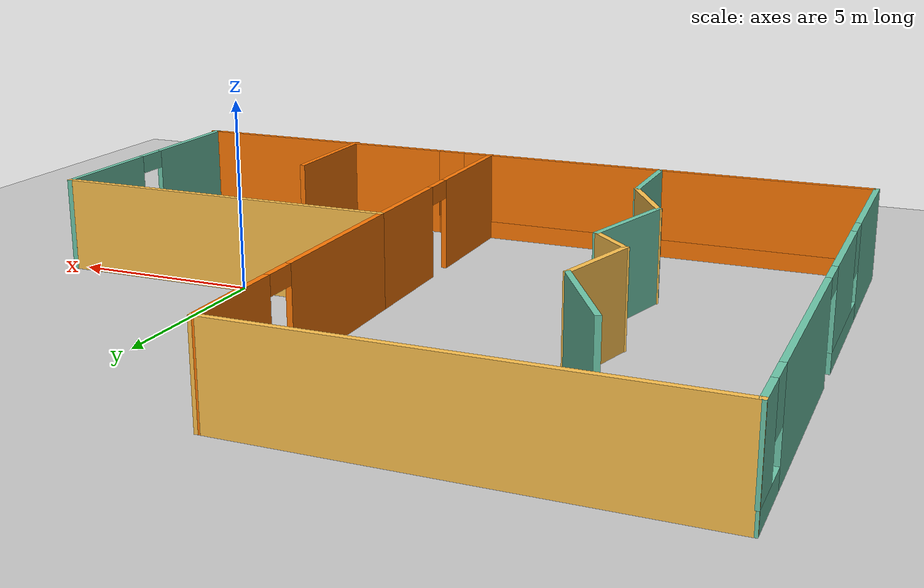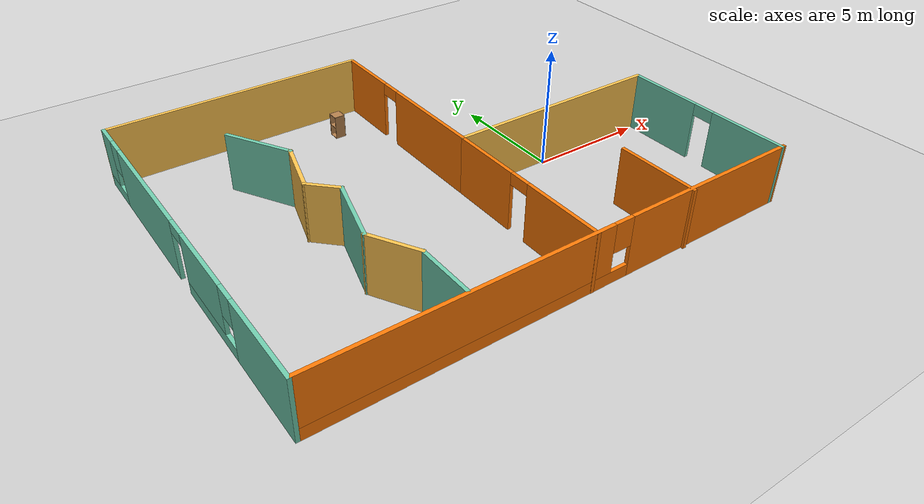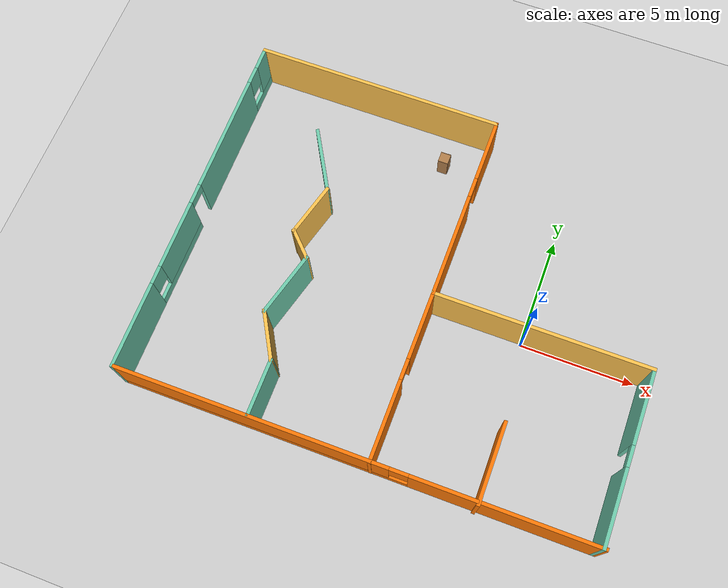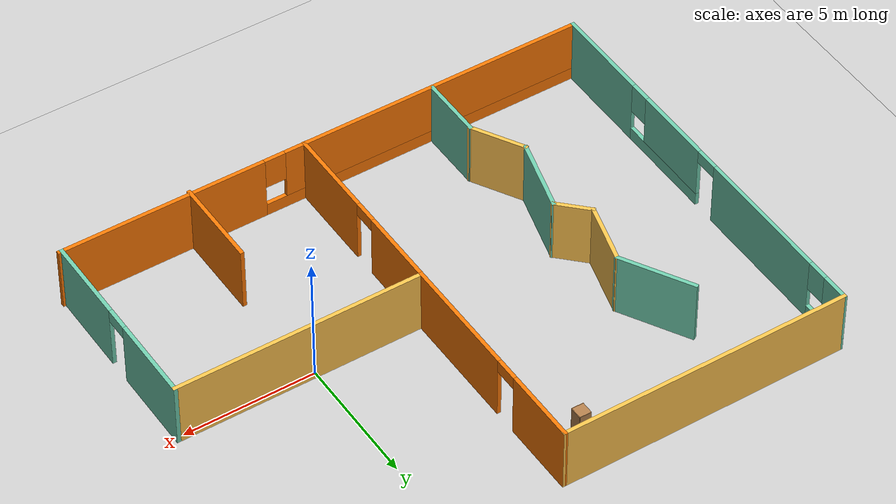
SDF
<sdf version="1.6">
 <world name="default">
  <light name="sun" type="directional">
   <pose>0 0 10 0 -0 0</pose>
   <diffuse>0.8 0.8 0.8 1</diffuse>
   <specular>0.2 0.2 0.2 1</specular>
   <attenuation>
    <range>1000</range>
    <constant>0.9</constant>
    <linear>0.01</linear>
    <quadratic>0.001</quadratic>
   </attenuation>
   <direction>-0.5 0.1 -0.9</direction>
  </light>
  <model name="ground_plane">
   <static>1</static>
   <link name="link">
    <collision name="collision">
     <geometry><plane><normal>0 0 1</normal><size>100 100</size></plane></geometry>
     <surface>
      <contact><collide_bitmask>65535</collide_bitmask></contact>
      <friction><ode><mu>100</mu><mu2>50</mu2></ode></friction>
     </surface>
    </collision>
    <visual name="visual">
     <cast_shadows>0</cast_shadows>
     <geometry><plane><normal>0 0 1</normal><size>100 100</size></plane></geometry>
     <material>
      <script><uri>file://media/materials/scripts/gazebo.material</uri><name>Gazebo/Grey</name></script>
     </material>
    </visual>
   </link>
  </model>
  <gravity>0 0 -9.8</gravity>
  <magnetic_field>6e-06 2.3e-05 -4.2e-05</magnetic_field>
  <atmosphere type="adiabatic"/>
  <physics name="default_physics" default="0" type="ode">
   <max_step_size>0.001</max_step_size>
   <real_time_factor>1</real_time_factor>
   <real_time_update_rate>1000</real_time_update_rate>
  </physics>
  <scene><ambient>0.4 0.4 0.4 1</ambient><background>0.7 0.7 0.7 1</background><shadows>1</shadows></scene>
  <spherical_coordinates>
   <surface_model>EARTH_WGS84</surface_model>
   <latitude_deg>0</latitude_deg>
   <longitude_deg>0</longitude_deg>
   <elevation>0</elevation>
   <heading_deg>0</heading_deg>
  </spherical_coordinates>
  <model name="office1">
   <pose>-4.87029 0.580295 0 0 -0 0</pose>
   <link name="Wall_0">
    <collision name="Wall_0_Collision">
     <geometry><box><size>9.5 0.15 2.5</size></box></geometry>
     <pose>0 0 1.25 0 -0 0</pose>
    </collision>
    <visual name="Wall_0_Visual">
     <pose>0 0 1.25 0 -0 0</pose>
     <geometry><box><size>9.5 0.15 2.5</size></box></geometry>
     <material>
      <script><uri>file://media/materials/scripts/gazebo.material</uri><name>Gazebo/Grey</name></script>
      <ambient>1 0.764706 0.305882 1</ambient>
     </material>
     <meta><layer>0</layer></meta>
    </visual>
    <pose>5.45348 -0.460182 0 0 -0 0</pose>
   </link>
   <link name="Wall_1">
    <pose>10.1285 -4.12676 0 0 0 -1.5708</pose>
    <visual name="Wall_1_Visual_0">
     <pose>-2.09705 0 1.25 0 -0 0</pose>
     <geometry><box><size>3.28964 0.15 2.5</size></box></geometry>
     <material>
      <script><uri>file://media/materials/scripts/gazebo.material</uri><name>Gazebo/Grey</name></script>
      <ambient>0.435294 0.796078 0.67451 1</ambient>
     </material>
     <meta><layer>0</layer></meta>
    </visual>
    <collision name="Wall_1_Collision_0">
     <geometry><box><size>3.28964 0.15 2.5</size></box></geometry>
     <pose>-2.09705 0 1.25 0 -0 0</pose>
    </collision>
    <visual name="Wall_1_Visual_1">
     <pose>2.09482 0 1.25 0 -0 0</pose>
     <geometry><box><size>3.29409 0.15 2.5</size></box></geometry>
     <material>
      <script><uri>file://media/materials/scripts/gazebo.material</uri><name>Gazebo/Grey</name></script>
      <ambient>0.435294 0.796078 0.67451 1</ambient>
     </material>
     <meta><layer>0</layer></meta>
    </visual>
    <collision name="Wall_1_Collision_1">
     <geometry><box><size>3.29409 0.15 2.5</size></box></geometry>
     <pose>2.09482 0 1.25 0 -0 0</pose>
    </collision>
    <visual name="Wall_1_Visual_2">
     <pose>-0.002226 0 2.25 0 -0 0</pose>
     <geometry><box><size>0.9 0.15 0.5</size></box></geometry>
     <material>
      <script><uri>file://media/materials/scripts/gazebo.material</uri><name>Gazebo/Grey</name></script>
      <ambient>0.435294 0.796078 0.67451 1</ambient>
     </material>
     <meta><layer>0</layer></meta>
    </visual>
    <collision name="Wall_1_Collision_2">
     <geometry><box><size>0.9 0.15 0.5</size></box></geometry>
     <pose>-0.002226 0 2.25 0 -0 0</pose>
    </collision>
   </link>
   <link name="Wall_10">
    <collision name="Wall_10_Collision">
     <geometry><box><size>2.5 0.15 2.5</size></box></geometry>
     <pose>0 0 1.25 0 -0 0</pose>
    </collision>
    <visual name="Wall_10_Visual">
     <pose>0 0 1.25 0 -0 0</pose>
     <geometry><box><size>2.5 0.15 2.5</size></box></geometry>
     <material>
      <script><uri>file://media/materials/scripts/gazebo.material</uri><name>Gazebo/Grey</name></script>
      <ambient>1 0.764706 0.305882 1</ambient>
     </material>
     <meta><layer>0</layer></meta>
    </visual>
    <pose>-5.32852 1.26925 0 0 0 -1.8326</pose>
   </link>
   <link name="Wall_11">
    <collision name="Wall_11_Collision">
     <geometry><box><size>1.5 0.15 2.5</size></box></geometry>
     <pose>0 0 1.25 0 -0 0</pose>
    </collision>
    <visual name="Wall_11_Visual">
     <pose>0 0 1.25 0 -0 0</pose>
     <geometry><box><size>1.5 0.15 2.5</size></box></geometry>
     <material>
      <script><uri>file://media/materials/scripts/gazebo.material</uri><name>Gazebo/Grey</name></script>
      <ambient>1 0.764706 0.305882 1</ambient>
     </material>
     <meta><layer>0</layer></meta>
    </visual>
    <pose>-5.15534 -0.343007 0 0 0 -0.785398</pose>
   </link>
   <link name="Wall_13">
    <collision name="Wall_13_Collision">
     <geometry><box><size>3 0.15 2.5</size></box></geometry>
     <pose>0 0 1.25 0 -0 0</pose>
    </collision>
    <visual name="Wall_13_Visual">
     <pose>0 0 1.25 0 -0 0</pose>
     <geometry><box><size>3 0.15 2.5</size></box></geometry>
     <material>
      <script><uri>file://media/materials/scripts/gazebo.material</uri><name>Gazebo/Grey</name></script>
      <ambient>0.435294 0.796078 0.67451 1</ambient>
     </material>
     <meta><layer>0</layer></meta>
    </visual>
    <pose>-5.04686 -2.19675 0 0 0 -1.8326</pose>
   </link>
   <link name="Wall_14">
    <collision name="Wall_14_Collision">
     <geometry><box><size>2.25 0.15 2.5</size></box></geometry>
     <pose>0 0 1.25 0 -0 0</pose>
    </collision>
    <visual name="Wall_14_Visual">
     <pose>0 0 1.25 0 -0 0</pose>
     <geometry><box><size>2.25 0.15 2.5</size></box></geometry>
     <material>
      <script><uri>file://media/materials/scripts/gazebo.material</uri><name>Gazebo/Grey</name></script>
      <ambient>1 0.764706 0.305882 1</ambient>
     </material>
     <meta><layer>0</layer></meta>
    </visual>
    <pose>-4.89068 -4.48252 0 0 0 -1.0472</pose>
   </link>
   <link name="Wall_15">
    <collision name="Wall_15_Collision">
     <geometry><box><size>2.5 0.15 2.5</size></box></geometry>
     <pose>0 0 1.25 0 -0 0</pose>
    </collision>
    <visual name="Wall_15_Visual">
     <pose>0 0 1.25 0 -0 0</pose>
     <geometry><box><size>2.5 0.15 2.5</size></box></geometry>
     <material>
      <script><uri>file://media/materials/scripts/gazebo.material</uri><name>Gazebo/Grey</name></script>
      <ambient>0.435294 0.796078 0.67451 1</ambient>
     </material>
     <meta><layer>0</layer></meta>
    </visual>
    <pose>-4.36568 -6.56685 0 0 0 -1.5708</pose>
   </link>
   <link name="Wall_17">
    <collision name="Wall_17_Collision">
     <geometry><box><size>3.5 0.15 2.5</size></box></geometry>
     <pose>0 0 1.25 0 -0 0</pose>
    </collision>
    <visual name="Wall_17_Visual">
     <pose>0 0 1.25 0 -0 0</pose>
     <geometry><box><size>3.5 0.15 2.5</size></box></geometry>
     <material>
      <script><uri>file://media/materials/scripts/gazebo.material</uri><name>Gazebo/Grey</name></script>
      <ambient>0.996078 0.47451 0.0196078 1</ambient>
     </material>
     <meta><layer>0</layer></meta>
    </visual>
    <pose>5.20705 -6.21483 0 0 -0 1.5708</pose>
   </link>
   <link name="Wall_2">
    <pose>0.046533 -7.79333 0 0 -0 3.14159</pose>
    <visual name="Wall_2_Visual_0">
     <pose>-6.28028 0 1.25 0 -0 0</pose>
     <geometry><box><size>7.93944 0.15 2.5</size></box></geometry>
     <material>
      <script><uri>file://media/materials/scripts/gazebo.material</uri><name>Gazebo/Grey</name></script>
      <ambient>0.996078 0.47451 0.0196078 1</ambient>
     </material>
     <meta><layer>0</layer></meta>
    </visual>
    <collision name="Wall_2_Collision_0">
     <geometry><box><size>7.93944 0.15 2.5</size></box></geometry>
     <pose>-6.28028 0 1.25 0 -0 0</pose>
    </collision>
    <visual name="Wall_2_Visual_1">
     <pose>3.96972 0 0.25 0 -0 0</pose>
     <geometry><box><size>12.5606 0.15 0.5</size></box></geometry>
     <material>
      <script><uri>file://media/materials/scripts/gazebo.material</uri><name>Gazebo/Grey</name></script>
      <ambient>0.996078 0.47451 0.0196078 1</ambient>
     </material>
     <meta><layer>0</layer></meta>
    </visual>
    <collision name="Wall_2_Collision_1">
     <geometry><box><size>12.5606 0.15 0.5</size></box></geometry>
     <pose>3.96972 0 0.25 0 -0 0</pose>
    </collision>
    <visual name="Wall_2_Visual_2">
     <pose>4.36972 0 1.5 0 -0 0</pose>
     <geometry><box><size>11.7606 0.15 2</size></box></geometry>
     <material>
      <script><uri>file://media/materials/scripts/gazebo.material</uri><name>Gazebo/Grey</name></script>
      <ambient>0.996078 0.47451 0.0196078 1</ambient>
     </material>
     <meta><layer>0</layer></meta>
    </visual>
    <collision name="Wall_2_Collision_2">
     <geometry><box><size>11.7606 0.15 2</size></box></geometry>
     <pose>4.36972 0 1.5 0 -0 0</pose>
    </collision>
    <visual name="Wall_2_Visual_3">
     <pose>-1.91056 0 1.9 0 -0 0</pose>
     <geometry><box><size>0.8 0.15 1.2</size></box></geometry>
     <material>
      <script><uri>file://media/materials/scripts/gazebo.material</uri><name>Gazebo/Grey</name></script>
      <ambient>0.996078 0.47451 0.0196078 1</ambient>
     </material>
     <meta><layer>0</layer></meta>
    </visual>
    <collision name="Wall_2_Collision_3">
     <geometry><box><size>0.8 0.15 1.2</size></box></geometry>
     <pose>-1.91056 0 1.9 0 -0 0</pose>
    </collision>
   </link>
   <link name="Wall_3">
    <pose>-10.2196 0.047037 0 0 -0 1.57056</pose>
    <visual name="Wall_3_Visual_0">
     <pose>-6.02315 0 1.25 0 -0 0</pose>
     <geometry><box><size>3.78444 0.15 2.5</size></box></geometry>
     <material>
      <script><uri>file://media/materials/scripts/gazebo.material</uri><name>Gazebo/Grey</name></script>
      <ambient>0.435294 0.796078 0.67451 1</ambient>
     </material>
     <meta><layer>0</layer></meta>
    </visual>
    <collision name="Wall_3_Collision_0">
     <geometry><box><size>3.78444 0.15 2.5</size></box></geometry>
     <pose>-6.02315 0 1.25 0 -0 0</pose>
    </collision>
    <visual name="Wall_3_Visual_1">
     <pose>3.34376 0 1.25 0 -0 0</pose>
     <geometry><box><size>5.38425 0.15 2.5</size></box></geometry>
     <material>
      <script><uri>file://media/materials/scripts/gazebo.material</uri><name>Gazebo/Grey</name></script>
      <ambient>0.435294 0.796078 0.67451 1</ambient>
     </material>
     <meta><layer>0</layer></meta>
    </visual>
    <collision name="Wall_3_Collision_1">
     <geometry><box><size>5.38425 0.15 2.5</size></box></geometry>
     <pose>3.34376 0 1.25 0 -0 0</pose>
    </collision>
    <visual name="Wall_3_Visual_2">
     <pose>-2.18965 0 0.25 0 -0 0</pose>
     <geometry><box><size>3.88256 0.15 0.5</size></box></geometry>
     <material>
      <script><uri>file://media/materials/scripts/gazebo.material</uri><name>Gazebo/Grey</name></script>
      <ambient>0.435294 0.796078 0.67451 1</ambient>
     </material>
     <meta><layer>0</layer></meta>
    </visual>
    <collision name="Wall_3_Collision_2">
     <geometry><box><size>3.88256 0.15 0.5</size></box></geometry>
     <pose>-2.18965 0 0.25 0 -0 0</pose>
    </collision>
    <visual name="Wall_3_Visual_3">
     <pose>6.97562 0 0.25 0 -0 0</pose>
     <geometry><box><size>1.87948 0.15 0.5</size></box></geometry>
     <material>
      <script><uri>file://media/materials/scripts/gazebo.material</uri><name>Gazebo/Grey</name></script>
      <ambient>0.435294 0.796078 0.67451 1</ambient>
     </material>
     <meta><layer>0</layer></meta>
    </visual>
    <collision name="Wall_3_Collision_3">
     <geometry><box><size>1.87948 0.15 0.5</size></box></geometry>
     <pose>6.97562 0 0.25 0 -0 0</pose>
    </collision>
    <visual name="Wall_3_Visual_4">
     <pose>-1.78965 0 1.5 0 -0 0</pose>
     <geometry><box><size>3.08256 0.15 2</size></box></geometry>
     <material>
      <script><uri>file://media/materials/scripts/gazebo.material</uri><name>Gazebo/Grey</name></script>
      <ambient>0.435294 0.796078 0.67451 1</ambient>
     </material>
     <meta><layer>0</layer></meta>
    </visual>
    <collision name="Wall_3_Collision_4">
     <geometry><box><size>3.08256 0.15 2</size></box></geometry>
     <pose>-1.78965 0 1.5 0 -0 0</pose>
    </collision>
    <visual name="Wall_3_Visual_5">
     <pose>-1.78965 0 1.5 0 -0 0</pose>
     <geometry><box><size>3.08256 0.15 2</size></box></geometry>
     <material>
      <script><uri>file://media/materials/scripts/gazebo.material</uri><name>Gazebo/Grey</name></script>
      <ambient>0.435294 0.796078 0.67451 1</ambient>
     </material>
     <meta><layer>0</layer></meta>
    </visual>
    <collision name="Wall_3_Collision_5">
     <geometry><box><size>3.08256 0.15 2</size></box></geometry>
     <pose>-1.78965 0 1.5 0 -0 0</pose>
    </collision>
    <visual name="Wall_3_Visual_6">
     <pose>7.37563 0 1.5 0 -0 0</pose>
     <geometry><box><size>1.07948 0.15 2</size></box></geometry>
     <material>
      <script><uri>file://media/materials/scripts/gazebo.material</uri><name>Gazebo/Grey</name></script>
      <ambient>0.435294 0.796078 0.67451 1</ambient>
     </material>
     <meta><layer>0</layer></meta>
    </visual>
    <collision name="Wall_3_Collision_6">
     <geometry><box><size>1.07948 0.15 2</size></box></geometry>
     <pose>7.37563 0 1.5 0 -0 0</pose>
    </collision>
    <visual name="Wall_3_Visual_7">
     <pose>-3.73093 0 1.9 0 -0 0</pose>
     <geometry><box><size>0.8 0.15 1.2</size></box></geometry>
     <material>
      <script><uri>file://media/materials/scripts/gazebo.material</uri><name>Gazebo/Grey</name></script>
      <ambient>0.435294 0.796078 0.67451 1</ambient>
     </material>
     <meta><layer>0</layer></meta>
    </visual>
    <collision name="Wall_3_Collision_7">
     <geometry><box><size>0.8 0.15 1.2</size></box></geometry>
     <pose>-3.73093 0 1.9 0 -0 0</pose>
    </collision>
    <visual name="Wall_3_Visual_8">
     <pose>6.43588 0 1.9 0 -0 0</pose>
     <geometry><box><size>0.8 0.15 1.2</size></box></geometry>
     <material>
      <script><uri>file://media/materials/scripts/gazebo.material</uri><name>Gazebo/Grey</name></script>
      <ambient>0.435294 0.796078 0.67451 1</ambient>
     </material>
     <meta><layer>0</layer></meta>
    </visual>
    <collision name="Wall_3_Collision_8">
     <geometry><box><size>0.8 0.15 1.2</size></box></geometry>
     <pose>6.43588 0 1.9 0 -0 0</pose>
    </collision>
    <visual name="Wall_3_Visual_9">
     <pose>0.201634 0 2.25 0 -0 0</pose>
     <geometry><box><size>0.9 0.15 0.5</size></box></geometry>
     <material>
      <script><uri>file://media/materials/scripts/gazebo.material</uri><name>Gazebo/Grey</name></script>
      <ambient>0.435294 0.796078 0.67451 1</ambient>
     </material>
     <meta><layer>0</layer></meta>
    </visual>
    <collision name="Wall_3_Collision_9">
     <geometry><box><size>0.9 0.15 0.5</size></box></geometry>
     <pose>0.201634 0 2.25 0 -0 0</pose>
    </collision>
    <visual name="Wall_3_Visual_10">
     <pose>0.201634 0 2.25 0 -0 0</pose>
     <geometry><box><size>0.9 0.15 0.5</size></box></geometry>
     <material>
      <script><uri>file://media/materials/scripts/gazebo.material</uri><name>Gazebo/Grey</name></script>
      <ambient>0.435294 0.796078 0.67451 1</ambient>
     </material>
     <meta><layer>0</layer></meta>
    </visual>
    <collision name="Wall_3_Collision_10">
     <geometry><box><size>0.9 0.15 0.5</size></box></geometry>
     <pose>0.201634 0 2.25 0 -0 0</pose>
    </collision>
   </link>
   <link name="Wall_4">
    <collision name="Wall_4_Collision">
     <geometry><box><size>11.1462 0.15 2.5</size></box></geometry>
     <pose>0 0 1.25 0 -0 0</pose>
    </collision>
    <visual name="Wall_4_Visual">
     <pose>0 0 1.25 0 -0 0</pose>
     <geometry><box><size>11.1462 0.15 2.5</size></box></geometry>
     <material>
      <script><uri>file://media/materials/scripts/gazebo.material</uri><name>Gazebo/Grey</name></script>
      <ambient>1 0.764706 0.305882 1</ambient>
     </material>
     <meta><layer>0</layer></meta>
    </visual>
    <pose>-4.71963 7.88861 0 0 -0 0.00022</pose>
   </link>
   <link name="Wall_5">
    <pose>0.778485 3.71482 0 0 0 -1.5708</pose>
    <visual name="Wall_5_Visual_0">
     <pose>-2.80357 0 1.25 0 -0 0</pose>
     <geometry><box><size>2.89285 0.15 2.5</size></box></geometry>
     <material>
      <script><uri>file://media/materials/scripts/gazebo.material</uri><name>Gazebo/Grey</name></script>
      <ambient>0.996078 0.47451 0.0196078 1</ambient>
     </material>
     <meta><layer>0</layer></meta>
    </visual>
    <collision name="Wall_5_Collision_0">
     <geometry><box><size>2.89285 0.15 2.5</size></box></geometry>
     <pose>-2.80357 0 1.25 0 -0 0</pose>
    </collision>
    <visual name="Wall_5_Visual_1">
     <pose>1.89643 0 1.25 0 -0 0</pose>
     <geometry><box><size>4.70715 0.15 2.5</size></box></geometry>
     <material>
      <script><uri>file://media/materials/scripts/gazebo.material</uri><name>Gazebo/Grey</name></script>
      <ambient>0.996078 0.47451 0.0196078 1</ambient>
     </material>
     <meta><layer>0</layer></meta>
    </visual>
    <collision name="Wall_5_Collision_1">
     <geometry><box><size>4.70715 0.15 2.5</size></box></geometry>
     <pose>1.89643 0 1.25 0 -0 0</pose>
    </collision>
    <visual name="Wall_5_Visual_2">
     <pose>-0.907148 0 2.25 0 -0 0</pose>
     <geometry><box><size>0.9 0.15 0.5</size></box></geometry>
     <material>
      <script><uri>file://media/materials/scripts/gazebo.material</uri><name>Gazebo/Grey</name></script>
      <ambient>0.996078 0.47451 0.0196078 1</ambient>
     </material>
     <meta><layer>0</layer></meta>
    </visual>
    <collision name="Wall_5_Collision_2">
     <geometry><box><size>0.9 0.15 0.5</size></box></geometry>
     <pose>-0.907148 0 2.25 0 -0 0</pose>
    </collision>
   </link>
   <link name="Wall_7">
    <pose>0.768346 -4.13185 0 0 0 -1.57356</pose>
    <visual name="Wall_7_Visual_0">
     <pose>-2.21489 0 1.25 0 -0 0</pose>
     <geometry><box><size>3.06359 0.15 2.5</size></box></geometry>
     <material>
      <script><uri>file://media/materials/scripts/gazebo.material</uri><name>Gazebo/Grey</name></script>
      <ambient>0.996078 0.47451 0.0196078 1</ambient>
     </material>
     <meta><layer>0</layer></meta>
    </visual>
    <collision name="Wall_7_Collision_0">
     <geometry><box><size>3.06359 0.15 2.5</size></box></geometry>
     <pose>-2.21489 0 1.25 0 -0 0</pose>
    </collision>
    <visual name="Wall_7_Visual_1">
     <pose>1.9818 0 1.25 0 -0 0</pose>
     <geometry><box><size>3.52978 0.15 2.5</size></box></geometry>
     <material>
      <script><uri>file://media/materials/scripts/gazebo.material</uri><name>Gazebo/Grey</name></script>
      <ambient>0.996078 0.47451 0.0196078 1</ambient>
     </material>
     <meta><layer>0</layer></meta>
    </visual>
    <collision name="Wall_7_Collision_1">
     <geometry><box><size>3.52978 0.15 2.5</size></box></geometry>
     <pose>1.9818 0 1.25 0 -0 0</pose>
    </collision>
    <visual name="Wall_7_Visual_2">
     <pose>-0.233092 0 2.25 0 -0 0</pose>
     <geometry><box><size>0.9 0.15 0.5</size></box></geometry>
     <material>
      <script><uri>file://media/materials/scripts/gazebo.material</uri><name>Gazebo/Grey</name></script>
      <ambient>0.996078 0.47451 0.0196078 1</ambient>
     </material>
     <meta><layer>0</layer></meta>
    </visual>
    <collision name="Wall_7_Collision_2">
     <geometry><box><size>0.9 0.15 0.5</size></box></geometry>
     <pose>-0.233092 0 2.25 0 -0 0</pose>
    </collision>
   </link>
   <link name="Wall_9">
    <collision name="Wall_9_Collision">
     <geometry><box><size>3 0.15 2.5</size></box></geometry>
     <pose>0 0 1.25 0 -0 0</pose>
    </collision>
    <visual name="Wall_9_Visual">
     <pose>0 0 1.25 0 -0 0</pose>
     <geometry><box><size>3 0.15 2.5</size></box></geometry>
     <material>
      <script><uri>file://media/materials/scripts/gazebo.material</uri><name>Gazebo/Grey</name></script>
      <ambient>0.435294 0.796078 0.67451 1</ambient>
     </material>
     <meta><layer>0</layer></meta>
    </visual>
    <pose>-5.73691 3.6383 0 0 0 -1.0472</pose>
   </link>
   <static>1</static>
  </model>
  <audio><device>default</device></audio>
  <model name="cabinet">
   <static>1</static>
   <link name="cabinet_bottom_plate">
    <inertial>
     <pose>0 0 -1 0 -0 0</pose>
     <inertia><ixx>2.05</ixx><ixy>0</ixy><ixz>0</ixz><iyy>2.05</iyy><iyz>0</iyz><izz>2.05</izz></inertia>
     <mass>25</mass>
    </inertial>
    <collision name="cabinet_bottom_plate_geom">
     <pose>0 0 0.01 0 -0 0</pose>
     <geometry><box><size>0.45 0.45 0.02</size></box></geometry>
    </collision>
    <visual name="cabinet_bottom_plate_geom_visual">
     <pose>0 0 0.01 0 -0 0</pose>
     <geometry><box><size>0.45 0.45 0.02</size></box></geometry>
     <material>
      <script><uri>file://media/materials/scripts/gazebo.material</uri><name>Gazebo/Wood</name></script>
     </material>
    </visual>
    <collision name="cabinet_bottom_plate_geom_cabinet_back_plate">
     <pose>0.235 0 0.51 0 -0 0</pose>
     <geometry><box><size>0.02 0.45 1.02</size></box></geometry>
    </collision>
    <visual name="cabinet_bottom_plate_geom_cabinet_back_plate_visual">
     <pose>0.235 0 0.51 0 -0 0</pose>
     <geometry><box><size>0.02 0.45 1.02</size></box></geometry>
     <material>
      <script><uri>file://media/materials/scripts/gazebo.material</uri><name>Gazebo/Wood</name></script>
     </material>
    </visual>
    <collision name="cabinet_bottom_plate_geom_cabinet_left_plate">
     <pose>0 0.235 0.51 0 -0 0</pose>
     <geometry><box><size>0.45 0.02 1.02</size></box></geometry>
    </collision>
    <visual name="cabinet_bottom_plate_geom_cabinet_left_plate_visual">
     <pose>0 0.235 0.51 0 -0 0</pose>
     <geometry><box><size>0.45 0.02 1.02</size></box></geometry>
     <material>
      <script><uri>file://media/materials/scripts/gazebo.material</uri><name>Gazebo/Wood</name></script>
     </material>
    </visual>
    <collision name="cabinet_bottom_plate_geom_cabinet_middle_plate">
     <pose>0 0 0.51 0 -0 0</pose>
     <geometry><box><size>0.45 0.45 0.02</size></box></geometry>
    </collision>
    <visual name="cabinet_bottom_plate_geom_cabinet_middle_plate_visual">
     <pose>0 0 0.51 0 -0 0</pose>
     <geometry><box><size>0.45 0.45 0.02</size></box></geometry>
     <material>
      <script><uri>file://media/materials/scripts/gazebo.material</uri><name>Gazebo/Wood</name></script>
     </material>
    </visual>
    <collision name="cabinet_bottom_plate_geom_cabinet_right_plate">
     <pose>0 -0.235 0.51 0 -0 0</pose>
     <geometry><box><size>0.45 0.02 1.02</size></box></geometry>
    </collision>
    <visual name="cabinet_bottom_plate_geom_cabinet_right_plate_visual">
     <pose>0 -0.235 0.51 0 -0 0</pose>
     <geometry><box><size>0.45 0.02 1.02</size></box></geometry>
     <material>
      <script><uri>file://media/materials/scripts/gazebo.material</uri><name>Gazebo/Wood</name></script>
     </material>
    </visual>
    <collision name="cabinet_bottom_plate_geom_cabinet_top_plate">
     <pose>0 0 1.01 0 -0 0</pose>
     <geometry><box><size>0.45 0.45 0.02</size></box></geometry>
    </collision>
    <visual name="cabinet_bottom_plate_geom_cabinet_top_plate_visual">
     <pose>0 0 1.01 0 -0 0</pose>
     <geometry><box><size>0.45 0.45 0.02</size></box></geometry>
     <material>
      <script><uri>file://media/materials/scripts/gazebo.material</uri><name>Gazebo/Wood</name></script>
     </material>
    </visual>
   </link>
   <pose>-5.86602 6.87314 0 0 -0 0</pose>
  </model>
 </world>
</sdf>
